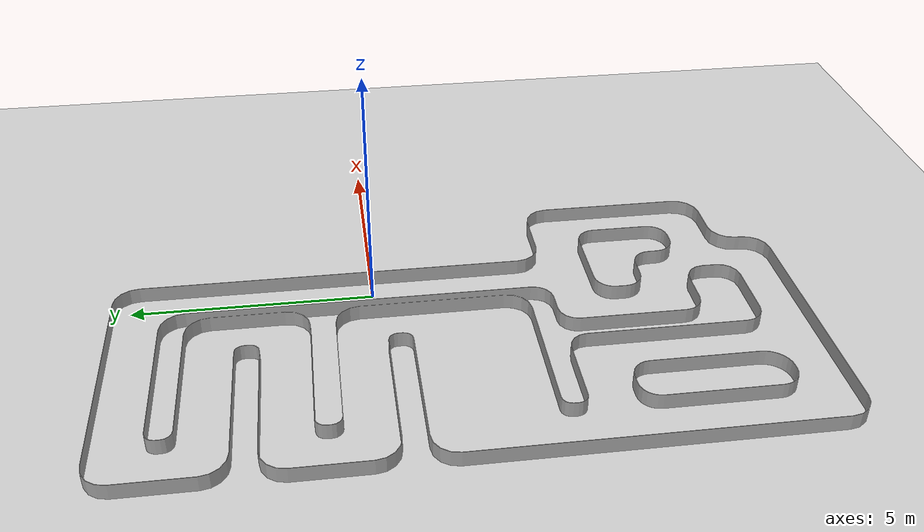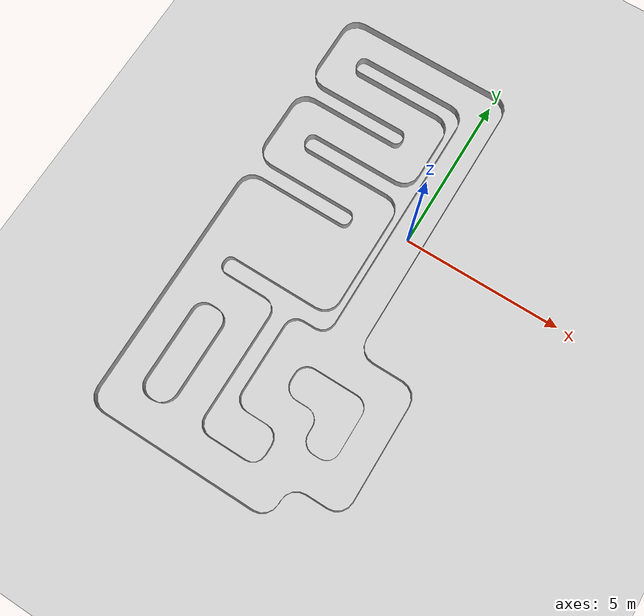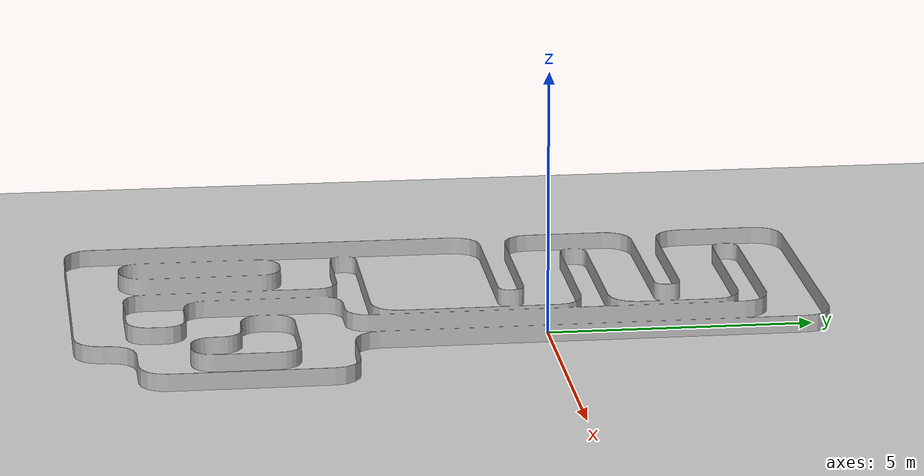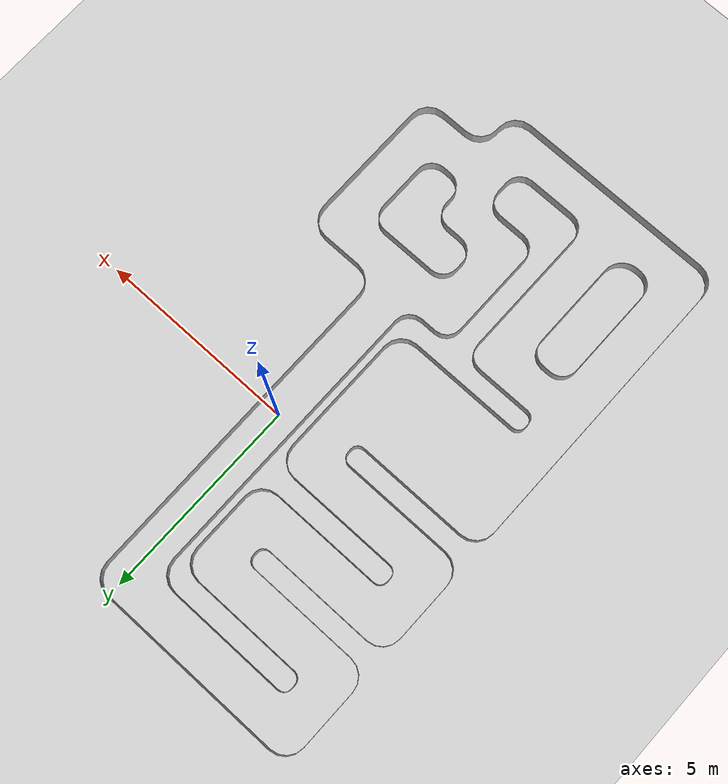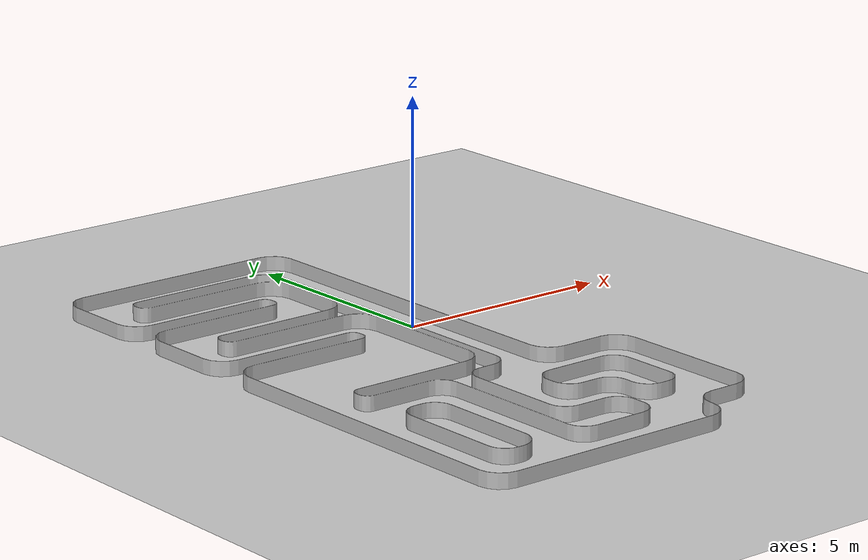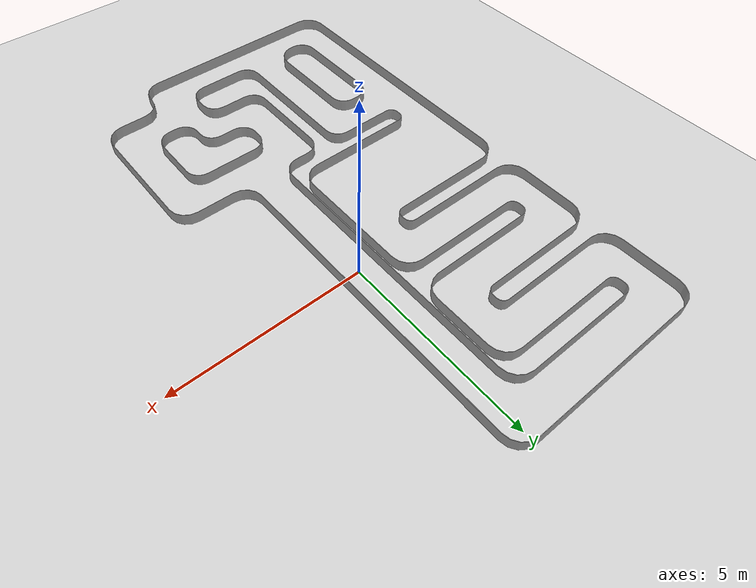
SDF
<sdf version="1.6">
 <world name="default">
  <light name="sun" type="directional">
   <pose>0 0 10 0 -0 0</pose>
   <diffuse>0.8 0.8 0.8 1</diffuse>
   <specular>0.2 0.2 0.2 1</specular>
   <attenuation>
    <range>1000</range>
    <constant>0.9</constant>
    <linear>0.01</linear>
    <quadratic>0.001</quadratic>
   </attenuation>
   <direction>-0.5 0.1 -0.9</direction>
  </light>
  <model name="ground_plane">
   <static>1</static>
   <link name="link">
    <collision name="collision">
     <geometry><plane><normal>0 0 1</normal><size>100 100</size></plane></geometry>
     <surface><friction><ode><mu>100</mu><mu2>50</mu2></ode></friction></surface>
    </collision>
    <visual name="visual">
     <cast_shadows>0</cast_shadows>
     <geometry><plane><normal>0 0 1</normal><size>100 100</size></plane></geometry>
     <material>
      <script><uri>file://media/materials/scripts/gazebo.material</uri><name>Gazebo/Grey</name></script>
     </material>
    </visual>
   </link>
  </model>
  <gravity>0 0 -9.8</gravity>
  <magnetic_field>6e-06 2.3e-05 -4.2e-05</magnetic_field>
  <atmosphere type="adiabatic"/>
  <physics name="default_physics" default="0" type="ode">
   <max_step_size>0.001</max_step_size>
   <real_time_factor>1</real_time_factor>
   <real_time_update_rate>1000</real_time_update_rate>
  </physics>
  <scene><ambient>0.4 0.4 0.4 1</ambient><background>0.7 0.7 0.7 1</background><shadows>1</shadows></scene>
  <audio><device>default</device></audio>
  <spherical_coordinates>
   <surface_model>EARTH_WGS84</surface_model>
   <latitude_deg>0</latitude_deg>
   <longitude_deg>0</longitude_deg>
   <elevation>0</elevation>
   <heading_deg>0</heading_deg>
  </spherical_coordinates>
  <model name="tianracer_racetrack">
   <link name="base_link">
    <inertial>
     <mass>1665.21</mass>
     <inertia>
      <ixx>7770.35</ixx>
      <ixy>-6.70196</ixy>
      <ixz>-666.722</ixz>
      <iyy>29580.2</iyy>
      <iyz>56.5793</iyz>
      <izz>32653</izz>
     </inertia>
    </inertial>
    <pose>-1.41291 -1.9216 0 0 -0 1.56844</pose>
    <visual name="visual">
     <geometry><mesh><uri>tianracer_racetrack/meshes/base_link.dae</uri><scale>1 1 1</scale></mesh></geometry>
    </visual>
    <collision name="collision">
     <geometry><mesh><uri>tianracer_racetrack/meshes/base_link.dae</uri><scale>1 1 1</scale></mesh></geometry>
    </collision>
   </link>
   <link name="wall_link">
    <inertial>
     <mass>1665.21</mass>
     <inertia>
      <ixx>7770.35</ixx>
      <ixy>-6.70196</ixy>
      <ixz>-666.722</ixz>
      <iyy>29580.2</iyy>
      <iyz>56.5793</iyz>
      <izz>32653</izz>
     </inertia>
    </inertial>
    <pose>-1.43091 -1.91728 -0 0 -0 1.57141</pose>
    <visual name="visual">
     <geometry><mesh><uri>tianracer_racetrack/meshes/wall.STL</uri><scale>1 1 1</scale></mesh></geometry>
    </visual>
    <collision name="collision">
     <geometry><mesh><uri>tianracer_racetrack/meshes/wall.STL</uri><scale>1 1 1</scale></mesh></geometry>
    </collision>
   </link>
   <joint name="base_link_2_wall_link_JOINT" type="fixed">
    <parent>base_link</parent>
    <child>wall_link</child>
    <physics>
     <ode><limit><cfm>0</cfm><erp>0.2</erp></limit><suspension><cfm>0</cfm><erp>0.2</erp></suspension></ode>
    </physics>
   </joint>
   <static>0</static>
   <pose>0.071364 0.211162 -0.19502 0 -0 0</pose>
  </model>
 </world>
</sdf>
